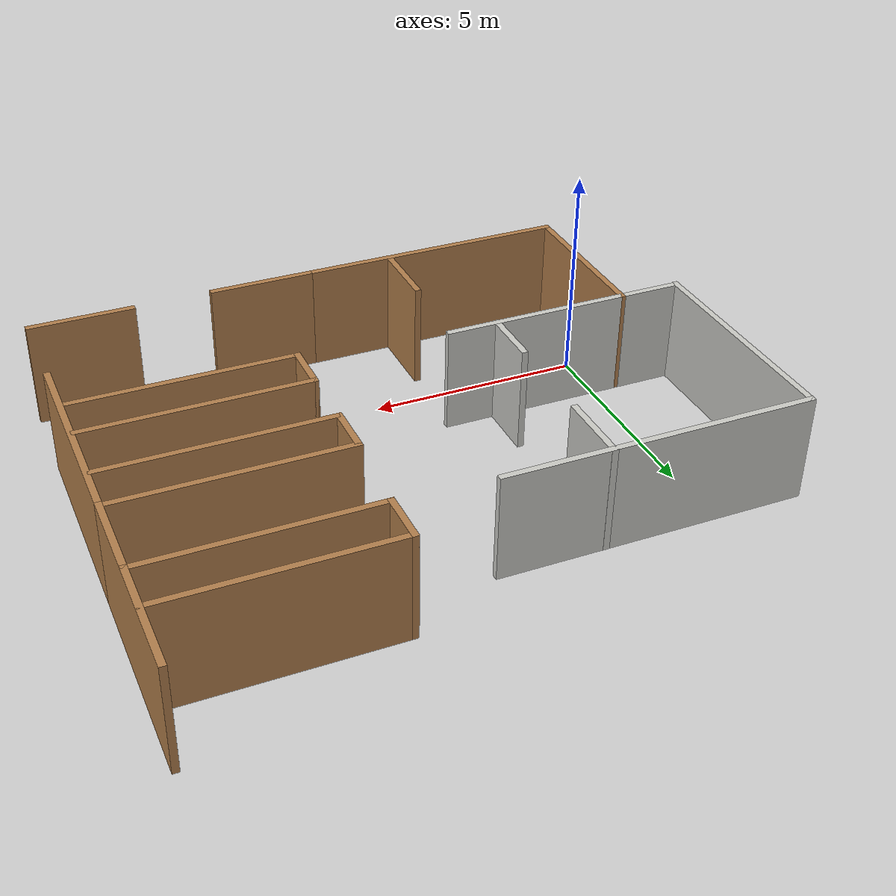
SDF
<?xml version='1.0'?>
<sdf version='1.6'>
  <model name='ECST_Lab'>
    <pose frame=''>5.13555 3.21503 0 0 -0 0</pose>
    <link name='Wall_10'>
      <collision name='Wall_10_Collision'>
        <geometry>
          <box>
            <size>4.5 0.15 2.5</size>
          </box>
        </geometry>
        <pose frame=''>0 0 1.25 0 -0 0</pose>
      </collision>
      <visual name='Wall_10_Visual'>
        <pose frame=''>0 0 1.25 0 -0 0</pose>
        <geometry>
          <box>
            <size>4.5 0.15 2.5</size>
          </box>
        </geometry>
        <material>
          <script>
            <uri>file://media/materials/scripts/gazebo.material</uri>
            <name>Gazebo/CeilingTiled</name>
          </script>
          <ambient>0 0 0 1</ambient>
        </material>
        <meta>
          <layer>0</layer>
        </meta>
      </visual>
      <pose frame=''>-3.58011 -1.9962 0 0 -0 0</pose>
    </link>
    <link name='Wall_13'>
      <collision name='Wall_13_Collision'>
        <geometry>
          <box>
            <size>1.75 0.15 2.5</size>
          </box>
        </geometry>
        <pose frame=''>0 0 1.25 0 -0 0</pose>
      </collision>
      <visual name='Wall_13_Visual'>
        <pose frame=''>0 0 1.25 0 -0 0</pose>
        <geometry>
          <box>
            <size>1.75 0.15 2.5</size>
          </box>
        </geometry>
        <material>
          <script>
            <uri>file://media/materials/scripts/gazebo.material</uri>
            <name>Gazebo/Wood</name>
          </script>
          <ambient>1 1 1 1</ambient>
        </material>
        <meta>
          <layer>0</layer>
        </meta>
      </visual>
      <pose frame=''>-1.48996 -4.899 0 0 -0 -1.5708</pose>
    </link>
    <link name='Wall_15'>
      <collision name='Wall_15_Collision'>
        <geometry>
          <box>
            <size>2.5 0.15 2.5</size>
          </box>
        </geometry>
        <pose frame=''>0 0 1.25 0 -0 0</pose>
      </collision>
      <visual name='Wall_15_Visual'>
        <pose frame=''>0 0 1.25 0 -0 0</pose>
        <geometry>
          <box>
            <size>2.5 0.15 2.5</size>
          </box>
        </geometry>
        <material>
          <script>
            <uri>file://media/materials/scripts/gazebo.material</uri>
            <name>Gazebo/Wood</name>
          </script>
          <ambient>1 1 1 1</ambient>
        </material>
        <meta>
          <layer>0</layer>
        </meta>
      </visual>
      <pose frame=''>1.75839 -5.8232 0 0 -0 0</pose>
    </link>
    <link name='Wall_18'>
      <collision name='Wall_18_Collision'>
        <geometry>
          <box>
            <size>2.5 0.15 2.5</size>
          </box>
        </geometry>
        <pose frame=''>0 0 1.25 0 -0 0</pose>
      </collision>
      <visual name='Wall_18_Visual'>
        <pose frame=''>0 0 1.25 0 -0 0</pose>
        <geometry>
          <box>
            <size>2.5 0.15 2.5</size>
          </box>
        </geometry>
        <material>
          <script>
            <uri>file://media/materials/scripts/gazebo.material</uri>
            <name>Gazebo/Wood</name>
          </script>
          <ambient>1 1 1 1</ambient>
        </material>
        <meta>
          <layer>0</layer>
        </meta>
      </visual>
      <pose frame=''>6.04756 -5.79611 0 0 -0 0</pose>
    </link>
    <link name='Wall_20'>
      <collision name='Wall_20_Collision'>
        <geometry>
          <box>
            <size>5.01176 0.15 2.5</size>
          </box>
        </geometry>
        <pose frame=''>0 0 1.25 0 -0 0</pose>
      </collision>
      <visual name='Wall_20_Visual'>
        <pose frame=''>0 0 1.25 0 -0 0</pose>
        <geometry>
          <box>
            <size>5.01176 0.15 2.5</size>
          </box>
        </geometry>
        <material>
          <script>
            <uri>file://media/materials/scripts/gazebo.material</uri>
            <name>Gazebo/Wood</name>
          </script>
          <ambient>1 1 1 1</ambient>
        </material>
        <meta>
          <layer>0</layer>
        </meta>
      </visual>
      <pose frame=''>7.21898 -1.25391 0 0 -0 1.5708</pose>
    </link>
    <link name='Wall_21'>
      <collision name='Wall_21_Collision'>
        <geometry>
          <box>
            <size>4.75 0.15 2.5</size>
          </box>
        </geometry>
        <pose frame=''>0 0 1.25 0 -0 0</pose>
      </collision>
      <visual name='Wall_21_Visual'>
        <pose frame=''>0 0 1.25 0 -0 0</pose>
        <geometry>
          <box>
            <size>4.75 0.15 2.5</size>
          </box>
        </geometry>
        <material>
          <script>
            <uri>file://media/materials/scripts/gazebo.material</uri>
            <name>Gazebo/Wood</name>
          </script>
          <ambient>1 1 1 1</ambient>
        </material>
        <meta>
          <layer>0</layer>
        </meta>
      </visual>
      <pose frame=''>7.21898 3.52349 0 0 -0 1.5708</pose>
    </link>
    <link name='Wall_23'>
      <collision name='Wall_23_Collision'>
        <geometry>
          <box>
            <size>1.5 0.15 2.5</size>
          </box>
        </geometry>
        <pose frame=''>0 0 1.25 0 -0 0</pose>
      </collision>
      <visual name='Wall_23_Visual'>
        <pose frame=''>0 0 1.25 0 -0 0</pose>
        <geometry>
          <box>
            <size>1.5 0.15 2.5</size>
          </box>
        </geometry>
        <material>
          <script>
            <uri>file://media/materials/scripts/gazebo.material</uri>
            <name>Gazebo/CeilingTiled</name>
          </script>
          <ambient>0 0 0 1</ambient>
        </material>
        <meta>
          <layer>0</layer>
        </meta>
      </visual>
      <pose frame=''>-2.56154 -1.32808 0 0 -0 1.5708</pose>
    </link>
    <link name='Wall_26'>
      <collision name='Wall_26_Collision'>
        <geometry>
          <box>
            <size>1.75 0.15 2.5</size>
          </box>
        </geometry>
        <pose frame=''>0 0 1.25 0 -0 0</pose>
      </collision>
      <visual name='Wall_26_Visual'>
        <pose frame=''>0 0 1.25 0 -0 0</pose>
        <geometry>
          <box>
            <size>1.75 0.15 2.5</size>
          </box>
        </geometry>
        <material>
          <script>
            <uri>file://media/materials/scripts/gazebo.material</uri>
            <name>Gazebo/CeilingTiled</name>
          </script>
          <ambient>0 0 0 1</ambient>
        </material>
        <meta>
          <layer>0</layer>
        </meta>
      </visual>
      <pose frame=''>-2.55527 2.53547 0 0 -0 1.5708</pose>
    </link>
    <link name='Wall_28'>
      <collision name='Wall_28_Collision'>
        <geometry>
          <box>
            <size>7.25 0.15 2.5</size>
          </box>
        </geometry>
        <pose frame=''>0 0 1.25 0 -0 0</pose>
      </collision>
      <visual name='Wall_28_Visual'>
        <pose frame=''>0 0 1.25 0 -0 0</pose>
        <geometry>
          <box>
            <size>7.25 0.15 2.5</size>
          </box>
        </geometry>
        <material>
          <script>
            <uri>file://media/materials/scripts/gazebo.material</uri>
            <name>Gazebo/CeilingTiled</name>
          </script>
          <ambient>0 0 0 1</ambient>
        </material>
        <meta>
          <layer>0</layer>
        </meta>
      </visual>
      <pose frame=''>-3.67257 3.33075 0 0 -0 0</pose>
    </link>
    <link name='Wall_30'>
      <collision name='Wall_30_Collision'>
        <geometry>
          <box>
            <size>5.5 0.15 2.5</size>
          </box>
        </geometry>
        <pose frame=''>0 0 1.25 0 -0 0</pose>
      </collision>
      <visual name='Wall_30_Visual'>
        <pose frame=''>0 0 1.25 0 -0 0</pose>
        <geometry>
          <box>
            <size>5.5 0.15 2.5</size>
          </box>
        </geometry>
        <material>
          <script>
            <uri>file://media/materials/scripts/gazebo.material</uri>
            <name>Gazebo/CeilingTiled</name>
          </script>
          <ambient>0 0 0 1</ambient>
        </material>
        <meta>
          <layer>0</layer>
        </meta>
      </visual>
      <pose frame=''>-7.22257 0.655749 0 0 -0 -1.5708</pose>
    </link>
    <link name='Wall_34'>
      <collision name='Wall_34_Collision'>
        <geometry>
          <box>
            <size>1.5 0.15 2.5</size>
          </box>
        </geometry>
        <pose frame=''>0 0 1.25 0 -0 0</pose>
      </collision>
      <visual name='Wall_34_Visual'>
        <pose frame=''>0 0 1.25 0 -0 0</pose>
        <geometry>
          <box>
            <size>1.5 0.15 2.5</size>
          </box>
        </geometry>
        <material>
          <script>
            <uri>file://media/materials/scripts/gazebo.material</uri>
            <name>Gazebo/CeilingTiled</name>
          </script>
          <ambient>0 0 0 1</ambient>
        </material>
        <meta>
          <layer>0</layer>
        </meta>
      </visual>
      <pose frame=''>-6.41861 -1.9962 0 0 -0 3.14159</pose>
    </link>
    <link name='Wall_36'>
      <collision name='Wall_36_Collision'>
        <geometry>
          <box>
            <size>5.25 0.15 2.5</size>
          </box>
        </geometry>
        <pose frame=''>0 0 1.25 0 -0 0</pose>
      </collision>
      <visual name='Wall_36_Visual'>
        <pose frame=''>0 0 1.25 0 -0 0</pose>
        <geometry>
          <box>
            <size>5.25 0.15 2.5</size>
          </box>
        </geometry>
        <material>
          <script>
            <uri>file://media/materials/scripts/gazebo.material</uri>
            <name>Gazebo/Wood</name>
          </script>
          <ambient>1 1 1 1</ambient>
        </material>
        <meta>
          <layer>0</layer>
        </meta>
      </visual>
      <pose frame=''>4.5914 -2.39809 0 0 -0 3.14159</pose>
    </link>
    <link name='Wall_39'>
      <collision name='Wall_39_Collision'>
        <geometry>
          <box>
            <size>1.25 0.15 2.5</size>
          </box>
        </geometry>
        <pose frame=''>0 0 1.25 0 -0 0</pose>
      </collision>
      <visual name='Wall_39_Visual'>
        <pose frame=''>0 0 1.25 0 -0 0</pose>
        <geometry>
          <box>
            <size>1.25 0.15 2.5</size>
          </box>
        </geometry>
        <material>
          <script>
            <uri>file://media/materials/scripts/gazebo.material</uri>
            <name>Gazebo/Wood</name>
          </script>
          <ambient>1 1 1 1</ambient>
        </material>
        <meta>
          <layer>0</layer>
        </meta>
      </visual>
      <pose frame=''>2.0414 -1.84809 0 0 -0 1.5708</pose>
    </link>
    <link name='Wall_41'>
      <collision name='Wall_41_Collision'>
        <geometry>
          <box>
            <size>5.25 0.15 2.5</size>
          </box>
        </geometry>
        <pose frame=''>0 0 1.25 0 -0 0</pose>
      </collision>
      <visual name='Wall_41_Visual'>
        <pose frame=''>0 0 1.25 0 -0 0</pose>
        <geometry>
          <box>
            <size>5.25 0.15 2.5</size>
          </box>
        </geometry>
        <material>
          <script>
            <uri>file://media/materials/scripts/gazebo.material</uri>
            <name>Gazebo/Wood</name>
          </script>
          <ambient>1 1 1 1</ambient>
        </material>
        <meta>
          <layer>0</layer>
        </meta>
      </visual>
      <pose frame=''>4.5914 -1.29809 0 0 -0 0</pose>
    </link>
    <link name='Wall_43'>
      <collision name='Wall_43_Collision'>
        <geometry>
          <box>
            <size>5.25 0.15 2.5</size>
          </box>
        </geometry>
        <pose frame=''>0 0 1.25 0 -0 0</pose>
      </collision>
      <visual name='Wall_43_Visual'>
        <pose frame=''>0 0 1.25 0 -0 0</pose>
        <geometry>
          <box>
            <size>5.25 0.15 2.5</size>
          </box>
        </geometry>
        <material>
          <script>
            <uri>file://media/materials/scripts/gazebo.material</uri>
            <name>Gazebo/Wood</name>
          </script>
          <ambient>1 1 1 1</ambient>
        </material>
        <meta>
          <layer>0</layer>
        </meta>
      </visual>
      <pose frame=''>4.57622 0.151257 0 0 -0 3.14159</pose>
    </link>
    <link name='Wall_44'>
      <collision name='Wall_44_Collision'>
        <geometry>
          <box>
            <size>1.25 0.15 2.5</size>
          </box>
        </geometry>
        <pose frame=''>0 0 1.25 0 -0 0</pose>
      </collision>
      <visual name='Wall_44_Visual'>
        <pose frame=''>0 0 1.25 0 -0 0</pose>
        <geometry>
          <box>
            <size>1.25 0.15 2.5</size>
          </box>
        </geometry>
        <material>
          <script>
            <uri>file://media/materials/scripts/gazebo.material</uri>
            <name>Gazebo/Wood</name>
          </script>
          <ambient>1 1 1 1</ambient>
        </material>
        <meta>
          <layer>0</layer>
        </meta>
      </visual>
      <pose frame=''>2.02622 0.701257 0 0 -0 1.5708</pose>
    </link>
    <link name='Wall_45'>
      <collision name='Wall_45_Collision'>
        <geometry>
          <box>
            <size>5.25 0.15 2.5</size>
          </box>
        </geometry>
        <pose frame=''>0 0 1.25 0 -0 0</pose>
      </collision>
      <visual name='Wall_45_Visual'>
        <pose frame=''>0 0 1.25 0 -0 0</pose>
        <geometry>
          <box>
            <size>5.25 0.15 2.5</size>
          </box>
        </geometry>
        <material>
          <script>
            <uri>file://media/materials/scripts/gazebo.material</uri>
            <name>Gazebo/Wood</name>
          </script>
          <ambient>1 1 1 1</ambient>
        </material>
        <meta>
          <layer>0</layer>
        </meta>
      </visual>
      <pose frame=''>4.57622 1.25126 0 0 -0 0</pose>
    </link>
    <link name='Wall_49'>
      <collision name='Wall_49_Collision'>
        <geometry>
          <box>
            <size>1.25 0.15 2.5</size>
          </box>
        </geometry>
        <pose frame=''>0 0 1.25 0 -0 0</pose>
      </collision>
      <visual name='Wall_49_Visual'>
        <pose frame=''>0 0 1.25 0 -0 0</pose>
        <geometry>
          <box>
            <size>1.25 0.15 2.5</size>
          </box>
        </geometry>
        <material>
          <script>
            <uri>file://media/materials/scripts/gazebo.material</uri>
            <name>Gazebo/Wood</name>
          </script>
          <ambient>1 1 1 1</ambient>
        </material>
        <meta>
          <layer>0</layer>
        </meta>
      </visual>
      <pose frame=''>2.11358 3.75818 0 0 -0 1.5708</pose>
    </link>
    <link name='Wall_52'>
      <collision name='Wall_52_Collision'>
        <geometry>
          <box>
            <size>5.25 0.15 2.5</size>
          </box>
        </geometry>
        <pose frame=''>0 0 1.25 0 -0 0</pose>
      </collision>
      <visual name='Wall_52_Visual'>
        <pose frame=''>0 0 1.25 0 -0 0</pose>
        <geometry>
          <box>
            <size>5.25 0.15 2.5</size>
          </box>
        </geometry>
        <material>
          <script>
            <uri>file://media/materials/scripts/gazebo.material</uri>
            <name>Gazebo/Wood</name>
          </script>
          <ambient>1 1 1 1</ambient>
        </material>
        <meta>
          <layer>0</layer>
        </meta>
      </visual>
      <pose frame=''>4.66358 4.30818 0 0 -0 0</pose>
    </link>
    <link name='Wall_54'>
      <collision name='Wall_54_Collision'>
        <geometry>
          <box>
            <size>5.25 0.15 2.5</size>
          </box>
        </geometry>
        <pose frame=''>0 0 1.25 0 -0 0</pose>
      </collision>
      <visual name='Wall_54_Visual'>
        <pose frame=''>0 0 1.25 0 -0 0</pose>
        <geometry>
          <box>
            <size>5.25 0.15 2.5</size>
          </box>
        </geometry>
        <material>
          <script>
            <uri>file://media/materials/scripts/gazebo.material</uri>
            <name>Gazebo/Wood</name>
          </script>
          <ambient>1 1 1 1</ambient>
        </material>
        <meta>
          <layer>0</layer>
        </meta>
      </visual>
      <pose frame=''>4.66358 3.20818 0 0 -0 0</pose>
    </link>
    <link name='Wall_6'>
      <collision name='Wall_6_Collision'>
        <geometry>
          <box>
            <size>6.5 0.15 2.5</size>
          </box>
        </geometry>
        <pose frame=''>0 0 1.25 0 -0 0</pose>
      </collision>
      <visual name='Wall_6_Visual'>
        <pose frame=''>0 0 1.25 0 -0 0</pose>
        <geometry>
          <box>
            <size>6.5 0.15 2.5</size>
          </box>
        </geometry>
        <material>
          <script>
            <uri>file://media/materials/scripts/gazebo.material</uri>
            <name>Gazebo/Wood</name>
          </script>
          <ambient>1 1 1 1</ambient>
        </material>
        <meta>
          <layer>0</layer>
        </meta>
      </visual>
      <pose frame=''>-2.59161 -5.8232 0 0 -0 0</pose>
    </link>
    <link name='Wall_8'>
      <collision name='Wall_8_Collision'>
        <geometry>
          <box>
            <size>3.97716 0.15 2.5</size>
          </box>
        </geometry>
        <pose frame=''>0 0 1.25 0 -0 0</pose>
      </collision>
      <visual name='Wall_8_Visual'>
        <pose frame=''>0 0 1.25 0 -0 0</pose>
        <geometry>
          <box>
            <size>3.97716 0.15 2.5</size>
          </box>
        </geometry>
        <material>
          <script>
            <uri>file://media/materials/scripts/gazebo.material</uri>
            <name>Gazebo/Wood</name>
          </script>
          <ambient>1 1 1 1</ambient>
        </material>
        <meta>
          <layer>0</layer>
        </meta>
      </visual>
      <pose frame=''>-5.76086 -3.9097 0 0 -0 1.56779</pose>
    </link>
    <static>1</static>
  </model>
</sdf>
